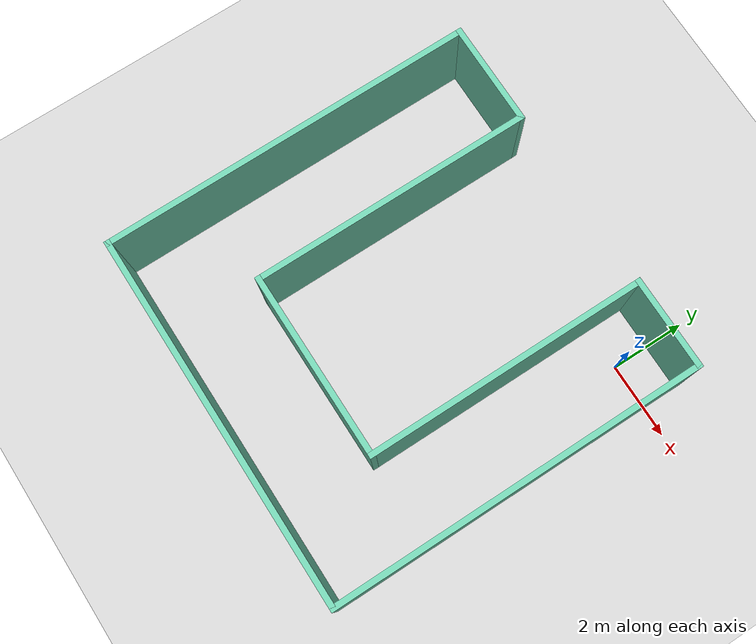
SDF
<sdf version="1.6">
 <world name="default">
  <light name="sun" type="directional">
   <pose>0 0 15 0 -0 0</pose>
   <diffuse>1 1 1 1</diffuse>
   <specular>0.1 0.1 0.1 1</specular>
   <attenuation>
    <range>1000</range>
    <constant>0.9</constant>
    <linear>0.01</linear>
    <quadratic>0.001</quadratic>
   </attenuation>
   <direction>-0.5 0.5 -1</direction>
  </light>
  <model name="ground_plane">
   <static>1</static>
   <link name="link">
    <collision name="collision">
     <geometry><plane><normal>0 0 1</normal><size>100 100</size></plane></geometry>
     <surface><friction><ode><mu>100</mu><mu2>50</mu2></ode></friction></surface>
    </collision>
    <visual name="visual">
     <transparency>1</transparency>
     <cast_shadows>0</cast_shadows>
     <geometry><plane><normal>0 0 1</normal><size>100 100</size></plane></geometry>
     <material>
      <script><uri>file://media/materials/scripts/gazebo.material</uri><name>Gazebo/Grey</name></script>
     </material>
    </visual>
   </link>
  </model>
  <gravity>0 0 -9.8</gravity>
  <magnetic_field>6e-06 2.3e-05 -4.2e-05</magnetic_field>
  <atmosphere type="adiabatic"/>
  <physics name="default_physics" default="0" type="ode">
   <max_step_size>0.001</max_step_size>
   <real_time_factor>1</real_time_factor>
   <real_time_update_rate>1000</real_time_update_rate>
  </physics>
  <scene><ambient>0.4 0.4 0.4 1</ambient><background>0.7 0.7 0.7 1</background><shadows>1</shadows></scene>
  <spherical_coordinates>
   <surface_model>EARTH_WGS84</surface_model>
   <latitude_deg>0</latitude_deg>
   <longitude_deg>0</longitude_deg>
   <elevation>0</elevation>
   <heading_deg>0</heading_deg>
  </spherical_coordinates>
  <model name="dragon_wall">
   <pose>-536.817 171.87 0 0 -0 0</pose>
   <link name="Wall_16">
    <collision name="Wall_16_Collision">
     <geometry><box><size>10 0.15 2.5</size></box></geometry>
     <pose>0 0 1.25 0 -0 0</pose>
    </collision>
    <visual name="Wall_16_Visual">
     <pose>0 0 1.25 0 -0 0</pose>
     <geometry><box><size>10 0.15 2.5</size></box></geometry>
     <material>
      <script><uri>file://media/materials/scripts/gazebo.material</uri><name>Gazebo/Grey</name></script>
      <ambient>0.435294 0.796078 0.67451 1</ambient>
     </material>
    </visual>
    <pose>528.118 -175.77 0 0 0 -1.5708</pose>
   </link>
   <link name="Wall_17">
    <collision name="Wall_17_Collision">
     <geometry><box><size>10 0.15 2.5</size></box></geometry>
     <pose>0 0 1.25 0 -0 0</pose>
    </collision>
    <visual name="Wall_17_Visual">
     <pose>0 0 1.25 0 -0 0</pose>
     <geometry><box><size>10 0.15 2.5</size></box></geometry>
     <material>
      <script><uri>file://media/materials/scripts/gazebo.material</uri><name>Gazebo/Grey</name></script>
      <ambient>0.435294 0.796078 0.67451 1</ambient>
     </material>
    </visual>
    <pose>533.043 -180.695 0 0 -0 0</pose>
   </link>
   <link name="Wall_18">
    <collision name="Wall_18_Collision">
     <geometry><box><size>10 0.15 2.5</size></box></geometry>
     <pose>0 0 1.25 0 -0 0</pose>
    </collision>
    <visual name="Wall_18_Visual">
     <pose>0 0 1.25 0 -0 0</pose>
     <geometry><box><size>10 0.15 2.5</size></box></geometry>
     <material>
      <script><uri>file://media/materials/scripts/gazebo.material</uri><name>Gazebo/Grey</name></script>
      <ambient>0.435294 0.796078 0.67451 1</ambient>
     </material>
    </visual>
    <pose>537.968 -175.77 0 0 -0 1.5708</pose>
   </link>
   <link name="Wall_2">
    <collision name="Wall_2_Collision">
     <geometry><box><size>498 0.15 2.5</size></box></geometry>
     <pose>0 0 1.25 0 -0 0</pose>
    </collision>
    <visual name="Wall_2_Visual">
     <pose>0 0 1.25 0 -0 0</pose>
     <geometry><box><size>498 0.15 2.5</size></box></geometry>
     <material>
      <script><uri>file://media/materials/scripts/gazebo.material</uri><name>Gazebo/Grey</name></script>
      <ambient>1 1 1 1</ambient>
     </material>
    </visual>
    <pose>-361.921 4.64705 0 0 0 -2.35619</pose>
   </link>
   <link name="Wall_21">
    <collision name="Wall_21_Collision">
     <geometry><box><size>2.5 0.15 2.5</size></box></geometry>
     <pose>0 0 1.25 0 -0 0</pose>
    </collision>
    <visual name="Wall_21_Visual">
     <pose>0 0 1.25 0 -0 0</pose>
     <geometry><box><size>2.5 0.15 2.5</size></box></geometry>
     <material>
      <script><uri>file://media/materials/scripts/gazebo.material</uri><name>Gazebo/Grey</name></script>
      <ambient>0.435294 0.796078 0.67451 1</ambient>
     </material>
    </visual>
    <pose>536.793 -170.845 0 0 -0 3.14159</pose>
   </link>
   <link name="Wall_22">
    <collision name="Wall_22_Collision">
     <geometry><box><size>7.5 0.15 2.5</size></box></geometry>
     <pose>0 0 1.25 0 -0 0</pose>
    </collision>
    <visual name="Wall_22_Visual">
     <pose>0 0 1.25 0 -0 0</pose>
     <geometry><box><size>7.5 0.15 2.5</size></box></geometry>
     <material>
      <script><uri>file://media/materials/scripts/gazebo.material</uri><name>Gazebo/Grey</name></script>
      <ambient>0.435294 0.796078 0.67451 1</ambient>
     </material>
    </visual>
    <pose>535.618 -174.52 0 0 0 -1.5708</pose>
   </link>
   <link name="Wall_23">
    <collision name="Wall_23_Collision">
     <geometry><box><size>5 0.15 2.5</size></box></geometry>
     <pose>0 0 1.25 0 -0 0</pose>
    </collision>
    <visual name="Wall_23_Visual">
     <pose>0 0 1.25 0 -0 0</pose>
     <geometry><box><size>5 0.15 2.5</size></box></geometry>
     <material>
      <script><uri>file://media/materials/scripts/gazebo.material</uri><name>Gazebo/Grey</name></script>
      <ambient>0.435294 0.796078 0.67451 1</ambient>
     </material>
    </visual>
    <pose>533.193 -178.195 0 0 -0 3.14159</pose>
   </link>
   <link name="Wall_24">
    <collision name="Wall_24_Collision">
     <geometry><box><size>7.5 0.15 2.5</size></box></geometry>
     <pose>0 0 1.25 0 -0 0</pose>
    </collision>
    <visual name="Wall_24_Visual">
     <pose>0 0 1.25 0 -0 0</pose>
     <geometry><box><size>7.5 0.15 2.5</size></box></geometry>
     <material>
      <script><uri>file://media/materials/scripts/gazebo.material</uri><name>Gazebo/Grey</name></script>
      <ambient>0.435294 0.796078 0.67451 1</ambient>
     </material>
    </visual>
    <pose>530.768 -174.52 0 0 -0 1.5708</pose>
   </link>
   <link name="Wall_25">
    <collision name="Wall_25_Collision">
     <geometry><box><size>2.8 0.15 2.5</size></box></geometry>
     <pose>0 0 1.25 0 -0 0</pose>
    </collision>
    <visual name="Wall_25_Visual">
     <pose>0 0 1.25 0 -0 0</pose>
     <geometry><box><size>2.8 0.15 2.5</size></box></geometry>
     <material>
      <script><uri>file://media/materials/scripts/gazebo.material</uri><name>Gazebo/Grey</name></script>
      <ambient>0.435294 0.796078 0.67451 1</ambient>
     </material>
    </visual>
    <pose>529.443 -170.845 0 0 -0 3.14159</pose>
   </link>
   <static>1</static>
  </model>
 </world>
</sdf>
